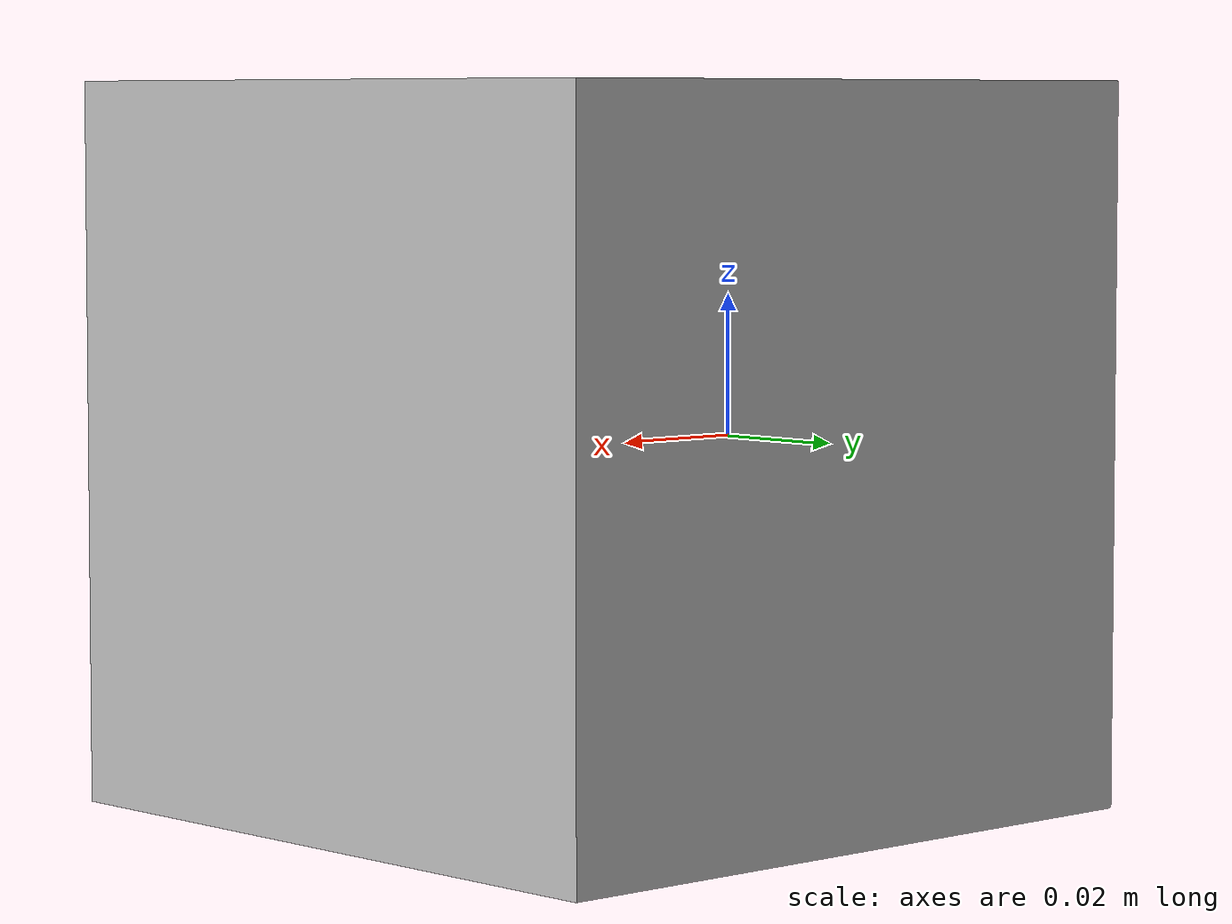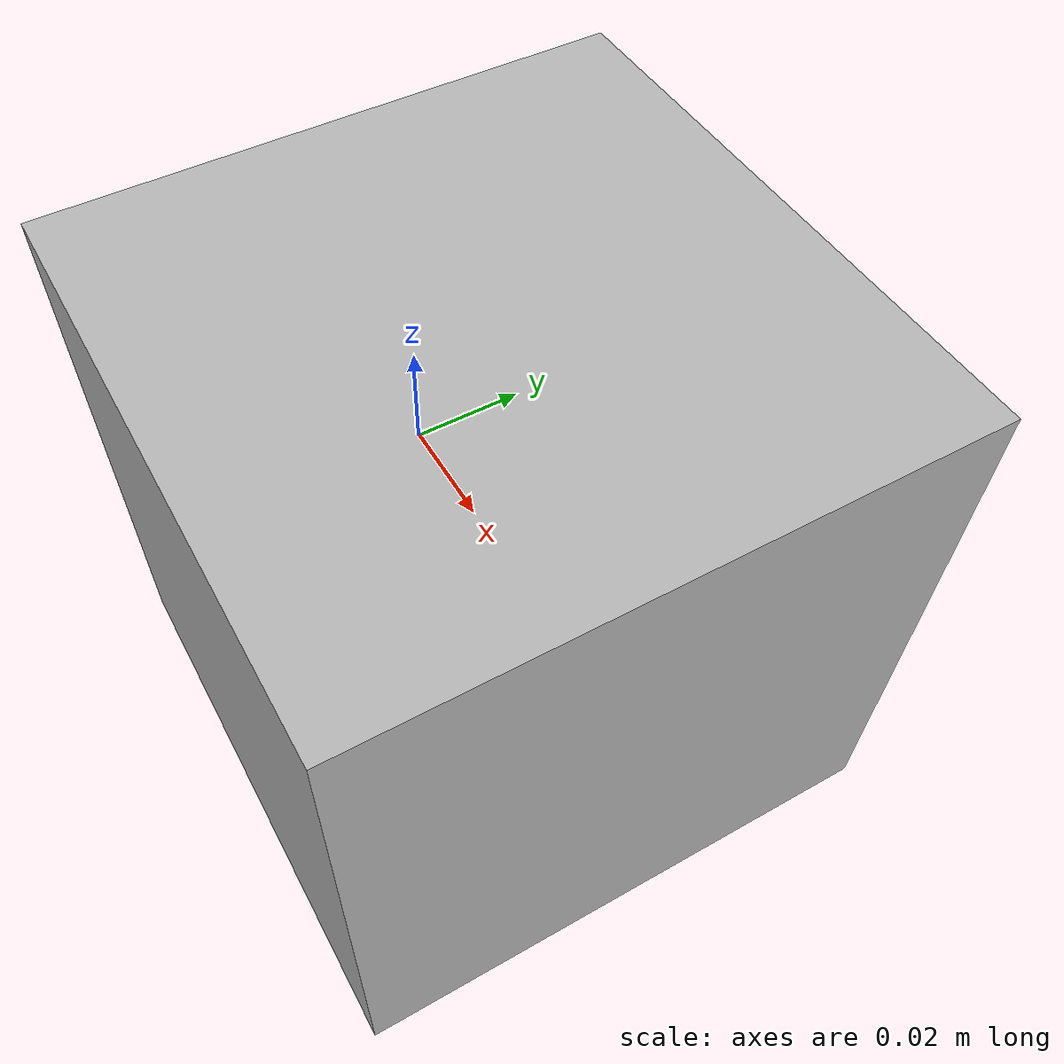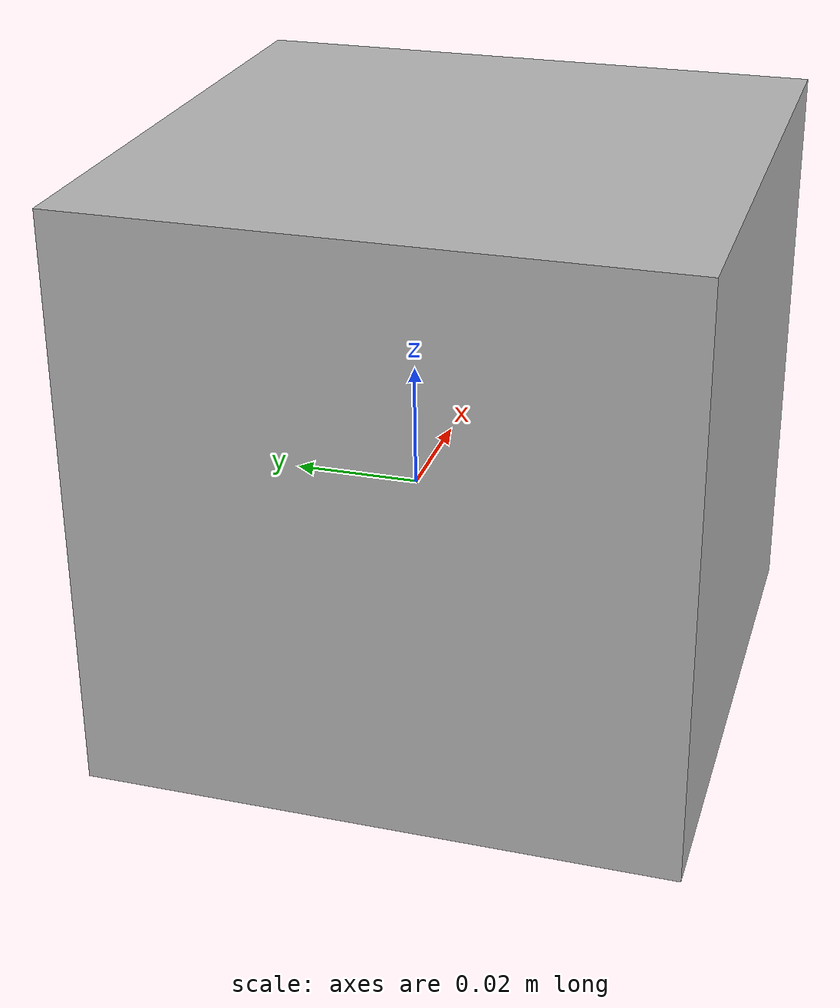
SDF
<?xml version="1.0" ?>
<sdf version="1.6">
  <model name="break_beam">
    <static>true</static>
    <pose>0.025 0 0 0 0 0</pose>

    <link name="break_beam_link">
      <inertial>
        <mass>0.1</mass>
      </inertial>

      <visual name="visual">
        <pose>0 0 0 0 1.5708 0</pose>
        <geometry>
          <box>
            <size>0.1 0.1 0.1 </size>
          </box>
        </geometry>
      </visual>

      <sensor type="gpu_lidar" name="break_beam_sensor">
        <topic>ariac/sensors/break_beam_sensor/scan</topic>
        <lidar>
          <scan>
            <horizontal>
              <samples>1</samples>
              <resolution>1</resolution>
              <min_angle>0</min_angle>
              <max_angle>0.01</max_angle>
            </horizontal>
          </scan>
          <range>
            <min>0.0001</min>
            <max>5</max>
            <resolution>0.001</resolution>
          </range>
          <!-- Using gazebo's noise instead of plugin's -->
          <noise>
            <type>gaussian</type>
            <mean>0.0</mean>
            <stddev>0.001</stddev>
          </noise>
        </lidar>
        <!-- Using gazebo's update rate instead of plugin's -->
        <update_rate>30</update_rate>
        <visualize>true</visualize>

        <plugin name="ariac_sensors::AriacRayPlugin" filename="libAriacRayPlugin.so">
          <gz_topic>ariac/sensors/break_beam_sensor/scan</gz_topic>
          <sensor_type>break_beam</sensor_type>
          <sensor_name>break_beam_sensor</sensor_name>
          <frame_name>break_beam_sensor_frame</frame_name>
        </plugin>
      </sensor>
    </link>
  </model>
</sdf>
